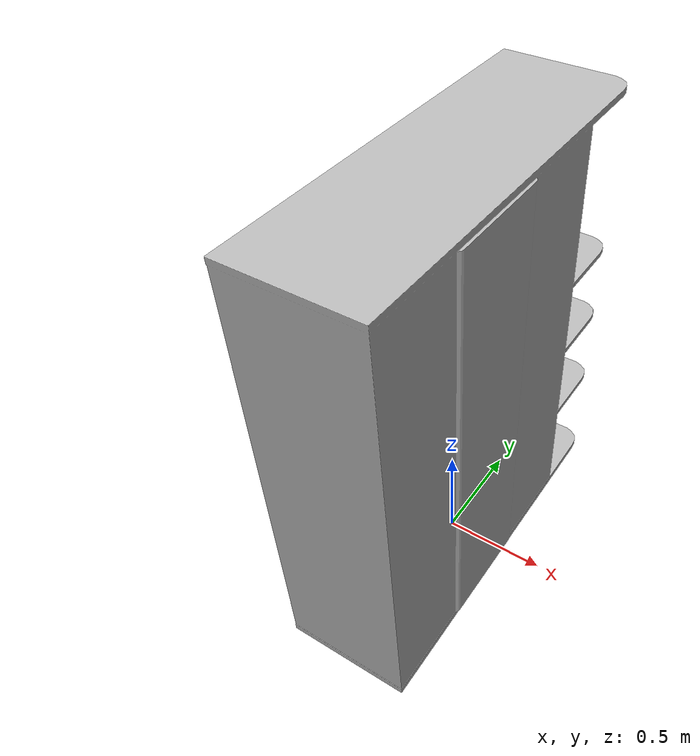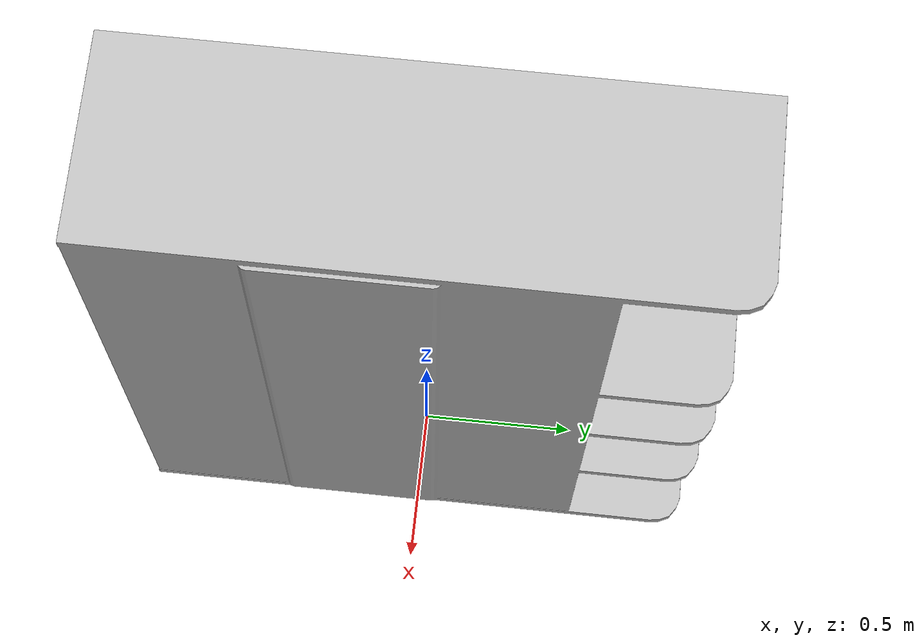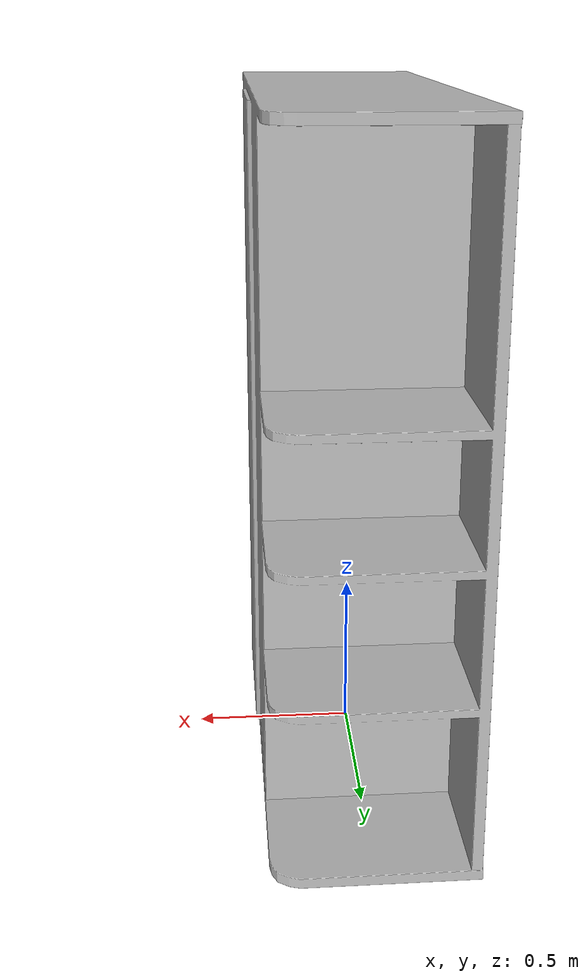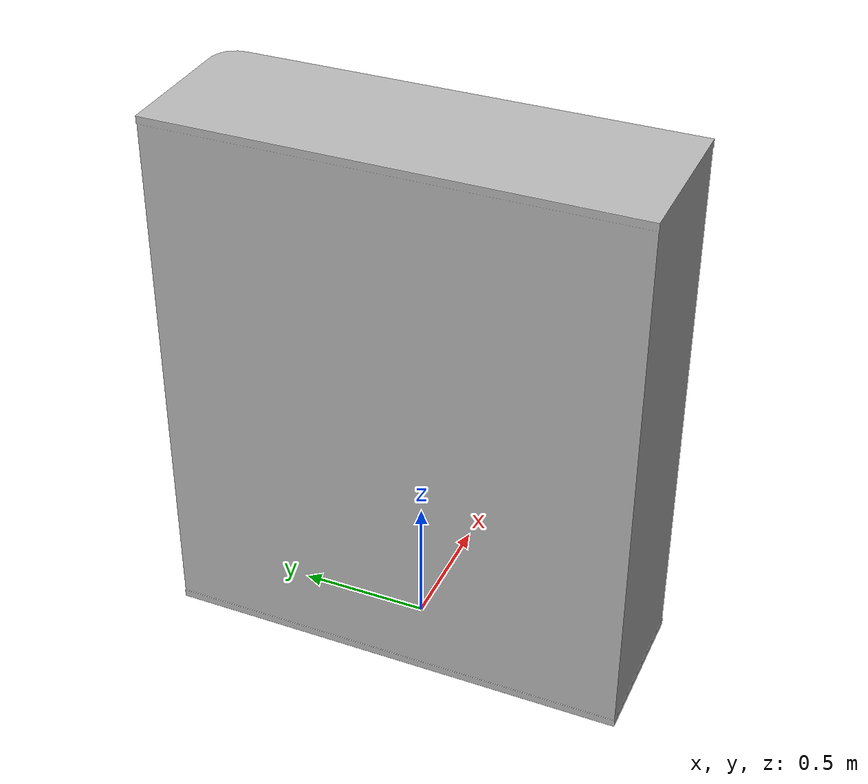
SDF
<?xml version='1.0'?>
<sdf version='1.4'>
  <model name='42'>
    <pose>0 0 0 0 0 0</pose>
    <static>true</static>
    <link name='link'>
      <collision name='collision'>
        <pose>0 0 0 0 0 0</pose>
        <geometry>
          <box>
            <size>0.610353 1.8 2</size>
          </box>
        </geometry>
      </collision>
      <visual name='visual'>
        <pose>0 0 0 0 0 0</pose>
        <geometry>
          <mesh><uri>model://42/42.dae</uri></mesh>
        </geometry>
      </visual>
    </link>
  </model>
</sdf>
